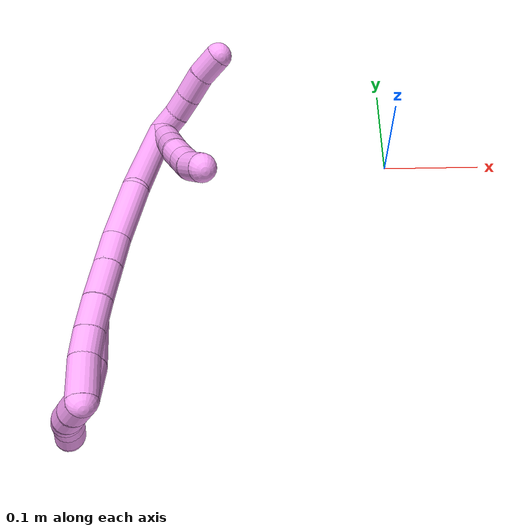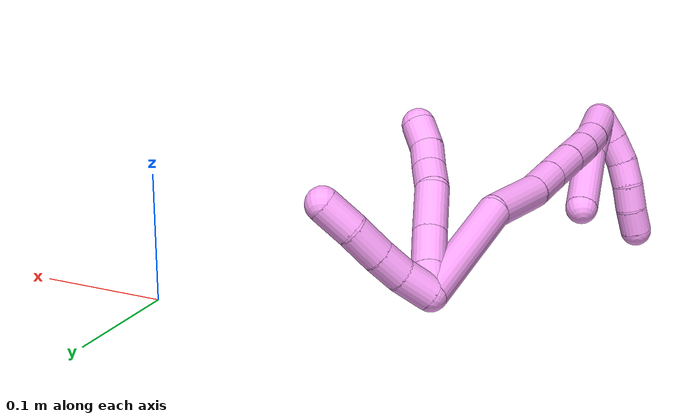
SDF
<sdf version="1.7">
 <world name="default">
  <model name="4">
   <static>0</static>
   <link name="4">
    <collision name="collision-cylinder-e_1_2_8">
     <pose>0.000596 0.000234 0.010581 -0.022149 0.056227 -0.000623</pose>
     <geometry><cylinder><radius>0.0125</radius><length>0.021201</length></cylinder></geometry>
     <surface>
      <friction><ode><mu>1.16</mu><mu2>1.16</mu2><slip1>0</slip1><slip2>0</slip2></ode></friction>
      <contact><ode><kp>1e+06</kp><kd>1</kd><max_vel>0</max_vel><min_depth>0.001</min_depth></ode></contact>
     </surface>
    </collision>
    <visual name="visual-cylinder-e_1_2_8">
     <pose>0.000596 0.000234 0.010581 -0.022149 0.056227 -0.000623</pose>
     <geometry><cylinder><radius>0.0125</radius><length>0.021201</length></cylinder></geometry>
     <material><ambient>1 0.65098 0.996078 1</ambient></material>
    </visual>
    <collision name="collision-cylinder-e_2_8_9">
     <pose>0.000728 -0.000214 0.036346 0.044924 -0.03049 -0.000685</pose>
     <geometry><cylinder><radius>0.0125</radius><length>0.030413</length></cylinder></geometry>
     <surface>
      <friction><ode><mu>1.16</mu><mu2>1.16</mu2><slip1>0</slip1><slip2>0</slip2></ode></friction>
      <contact><ode><kp>1e+06</kp><kd>1</kd><max_vel>0</max_vel><min_depth>0.001</min_depth></ode></contact>
     </surface>
    </collision>
    <visual name="visual-cylinder-e_2_8_9">
     <pose>0.000728 -0.000214 0.036346 0.044924 -0.03049 -0.000685</pose>
     <geometry><cylinder><radius>0.0125</radius><length>0.030413</length></cylinder></geometry>
     <material><ambient>1 0.65098 0.996078 1</ambient></material>
    </visual>
    <collision name="collision-cylinder-e_3_9_10">
     <pose>-0.001996 -0.001524 0.069881 0.034193 -0.122456 -0.002096</pose>
     <geometry><cylinder><radius>0.0125</radius><length>0.037001</length></cylinder></geometry>
     <surface>
      <friction><ode><mu>1.16</mu><mu2>1.16</mu2><slip1>0</slip1><slip2>0</slip2></ode></friction>
      <contact><ode><kp>1e+06</kp><kd>1</kd><max_vel>0</max_vel><min_depth>0.001</min_depth></ode></contact>
     </surface>
    </collision>
    <visual name="visual-cylinder-e_3_9_10">
     <pose>-0.001996 -0.001524 0.069881 0.034193 -0.122456 -0.002096</pose>
     <geometry><cylinder><radius>0.0125</radius><length>0.037001</length></cylinder></geometry>
     <material><ambient>1 0.65098 0.996078 1</ambient></material>
    </visual>
    <collision name="collision-cylinder-e_4_10_11">
     <pose>-0.002668 -0.001819 0.098135 -0.033622 0.158896 -0.002677</pose>
     <geometry><cylinder><radius>0.0125</radius><length>0.02007</length></cylinder></geometry>
     <surface>
      <friction><ode><mu>1.16</mu><mu2>1.16</mu2><slip1>0</slip1><slip2>0</slip2></ode></friction>
      <contact><ode><kp>1e+06</kp><kd>1</kd><max_vel>0</max_vel><min_depth>0.001</min_depth></ode></contact>
     </surface>
    </collision>
    <visual name="visual-cylinder-e_4_10_11">
     <pose>-0.002668 -0.001819 0.098135 -0.033622 0.158896 -0.002677</pose>
     <geometry><cylinder><radius>0.0125</radius><length>0.02007</length></cylinder></geometry>
     <material><ambient>1 0.65098 0.996078 1</ambient></material>
    </visual>
    <collision name="collision-cylinder-e_5_11_12">
     <pose>-0.000616 -0.001145 0.118039 -0.034023 0.046276 -0.000787</pose>
     <geometry><cylinder><radius>0.0125</radius><length>0.020034</length></cylinder></geometry>
     <surface>
      <friction><ode><mu>1.16</mu><mu2>1.16</mu2><slip1>0</slip1><slip2>0</slip2></ode></friction>
      <contact><ode><kp>1e+06</kp><kd>1</kd><max_vel>0</max_vel><min_depth>0.001</min_depth></ode></contact>
     </surface>
    </collision>
    <visual name="visual-cylinder-e_5_11_12">
     <pose>-0.000616 -0.001145 0.118039 -0.034023 0.046276 -0.000787</pose>
     <geometry><cylinder><radius>0.0125</radius><length>0.020034</length></cylinder></geometry>
     <material><ambient>1 0.65098 0.996078 1</ambient></material>
    </visual>
    <collision name="collision-cylinder-e_6_12_6">
     <pose>-0.00037 0.002327 0.138207 -0.298778 -0.020436 0.003076</pose>
     <geometry><cylinder><radius>0.0125</radius><length>0.021282</length></cylinder></geometry>
     <surface>
      <friction><ode><mu>1.16</mu><mu2>1.16</mu2><slip1>0</slip1><slip2>0</slip2></ode></friction>
      <contact><ode><kp>1e+06</kp><kd>1</kd><max_vel>0</max_vel><min_depth>0.001</min_depth></ode></contact>
     </surface>
    </collision>
    <visual name="visual-cylinder-e_6_12_6">
     <pose>-0.00037 0.002327 0.138207 -0.298778 -0.020436 0.003076</pose>
     <geometry><cylinder><radius>0.0125</radius><length>0.021282</length></cylinder></geometry>
     <material><ambient>1 0.65098 0.996078 1</ambient></material>
    </visual>
    <collision name="collision-cylinder-e_1_2_13">
     <pose>-0.003795 0.011826 0.003117 -1.31308 -0.300889 0.232568</pose>
     <geometry><cylinder><radius>0.0125</radius><length>0.02561</length></cylinder></geometry>
     <surface>
      <friction><ode><mu>1.16</mu><mu2>1.16</mu2><slip1>0</slip1><slip2>0</slip2></ode></friction>
      <contact><ode><kp>1e+06</kp><kd>1</kd><max_vel>0</max_vel><min_depth>0.001</min_depth></ode></contact>
     </surface>
    </collision>
    <visual name="visual-cylinder-e_1_2_13">
     <pose>-0.003795 0.011826 0.003117 -1.31308 -0.300889 0.232568</pose>
     <geometry><cylinder><radius>0.0125</radius><length>0.02561</length></cylinder></geometry>
     <material><ambient>1 0.65098 0.996078 1</ambient></material>
    </visual>
    <collision name="collision-cylinder-e_2_13_14">
     <pose>-0.012049 0.033107 0.009438 -1.24412 -0.420078 0.303366</pose>
     <geometry><cylinder><radius>0.0125</radius><length>0.021868</length></cylinder></geometry>
     <surface>
      <friction><ode><mu>1.16</mu><mu2>1.16</mu2><slip1>0</slip1><slip2>0</slip2></ode></friction>
      <contact><ode><kp>1e+06</kp><kd>1</kd><max_vel>0</max_vel><min_depth>0.001</min_depth></ode></contact>
     </surface>
    </collision>
    <visual name="visual-cylinder-e_2_13_14">
     <pose>-0.012049 0.033107 0.009438 -1.24412 -0.420078 0.303366</pose>
     <geometry><cylinder><radius>0.0125</radius><length>0.021868</length></cylinder></geometry>
     <material><ambient>1 0.65098 0.996078 1</ambient></material>
    </visual>
    <collision name="collision-cylinder-e_3_14_15">
     <pose>-0.022212 0.053424 0.01699 -1.19 -0.453633 0.309899</pose>
     <geometry><cylinder><radius>0.0125</radius><length>0.026031</length></cylinder></geometry>
     <surface>
      <friction><ode><mu>1.16</mu><mu2>1.16</mu2><slip1>0</slip1><slip2>0</slip2></ode></friction>
      <contact><ode><kp>1e+06</kp><kd>1</kd><max_vel>0</max_vel><min_depth>0.001</min_depth></ode></contact>
     </surface>
    </collision>
    <visual name="visual-cylinder-e_3_14_15">
     <pose>-0.022212 0.053424 0.01699 -1.19 -0.453633 0.309899</pose>
     <geometry><cylinder><radius>0.0125</radius><length>0.026031</length></cylinder></geometry>
     <material><ambient>1 0.65098 0.996078 1</ambient></material>
    </visual>
    <collision name="collision-cylinder-e_4_15_5">
     <pose>-0.031855 0.075639 0.026906 -1.11489 -0.301969 0.189123</pose>
     <geometry><cylinder><radius>0.0125</radius><length>0.026491</length></cylinder></geometry>
     <surface>
      <friction><ode><mu>1.16</mu><mu2>1.16</mu2><slip1>0</slip1><slip2>0</slip2></ode></friction>
      <contact><ode><kp>1e+06</kp><kd>1</kd><max_vel>0</max_vel><min_depth>0.001</min_depth></ode></contact>
     </surface>
    </collision>
    <visual name="visual-cylinder-e_4_15_5">
     <pose>-0.031855 0.075639 0.026906 -1.11489 -0.301969 0.189123</pose>
     <geometry><cylinder><radius>0.0125</radius><length>0.026491</length></cylinder></geometry>
     <material><ambient>1 0.65098 0.996078 1</ambient></material>
    </visual>
    <collision name="collision-cylinder-e_1_2_16">
     <pose>0.001099 -0.025617 0.041462 0.553436 0.022538 0.006401</pose>
     <geometry><cylinder><radius>0.0125</radius><length>0.097499</length></cylinder></geometry>
     <surface>
      <friction><ode><mu>1.16</mu><mu2>1.16</mu2><slip1>0</slip1><slip2>0</slip2></ode></friction>
      <contact><ode><kp>1e+06</kp><kd>1</kd><max_vel>0</max_vel><min_depth>0.001</min_depth></ode></contact>
     </surface>
    </collision>
    <visual name="visual-cylinder-e_1_2_16">
     <pose>0.001099 -0.025617 0.041462 0.553436 0.022538 0.006401</pose>
     <geometry><cylinder><radius>0.0125</radius><length>0.097499</length></cylinder></geometry>
     <material><ambient>1 0.65098 0.996078 1</ambient></material>
    </visual>
    <collision name="collision-cylinder-e_2_16_17">
     <pose>0.008682 -0.070177 0.100831 0.813503 0.243816 0.105455</pose>
     <geometry><cylinder><radius>0.0125</radius><length>0.053723</length></cylinder></geometry>
     <surface>
      <friction><ode><mu>1.16</mu><mu2>1.16</mu2><slip1>0</slip1><slip2>0</slip2></ode></friction>
      <contact><ode><kp>1e+06</kp><kd>1</kd><max_vel>0</max_vel><min_depth>0.001</min_depth></ode></contact>
     </surface>
    </collision>
    <visual name="visual-cylinder-e_2_16_17">
     <pose>0.008682 -0.070177 0.100831 0.813503 0.243816 0.105455</pose>
     <geometry><cylinder><radius>0.0125</radius><length>0.053723</length></cylinder></geometry>
     <material><ambient>1 0.65098 0.996078 1</ambient></material>
    </visual>
    <collision name="collision-cylinder-e_3_17_18">
     <pose>0.018118 -0.097746 0.130103 0.64922 0.203964 0.068848</pose>
     <geometry><cylinder><radius>0.0125</radius><length>0.029142</length></cylinder></geometry>
     <surface>
      <friction><ode><mu>1.16</mu><mu2>1.16</mu2><slip1>0</slip1><slip2>0</slip2></ode></friction>
      <contact><ode><kp>1e+06</kp><kd>1</kd><max_vel>0</max_vel><min_depth>0.001</min_depth></ode></contact>
     </surface>
    </collision>
    <visual name="visual-cylinder-e_3_17_18">
     <pose>0.018118 -0.097746 0.130103 0.64922 0.203964 0.068848</pose>
     <geometry><cylinder><radius>0.0125</radius><length>0.029142</length></cylinder></geometry>
     <material><ambient>1 0.65098 0.996078 1</ambient></material>
    </visual>
    <collision name="collision-cylinder-e_4_18_19">
     <pose>0.024462 -0.11625 0.154356 0.653975 0.206003 0.070088</pose>
     <geometry><cylinder><radius>0.0125</radius><length>0.033175</length></cylinder></geometry>
     <surface>
      <friction><ode><mu>1.16</mu><mu2>1.16</mu2><slip1>0</slip1><slip2>0</slip2></ode></friction>
      <contact><ode><kp>1e+06</kp><kd>1</kd><max_vel>0</max_vel><min_depth>0.001</min_depth></ode></contact>
     </surface>
    </collision>
    <visual name="visual-cylinder-e_4_18_19">
     <pose>0.024462 -0.11625 0.154356 0.653975 0.206003 0.070088</pose>
     <geometry><cylinder><radius>0.0125</radius><length>0.033175</length></cylinder></geometry>
     <material><ambient>1 0.65098 0.996078 1</ambient></material>
    </visual>
    <collision name="collision-cylinder-e_5_19_20">
     <pose>0.031409 -0.134526 0.178038 0.661218 0.254255 0.087679</pose>
     <geometry><cylinder><radius>0.0125</radius><length>0.028262</length></cylinder></geometry>
     <surface>
      <friction><ode><mu>1.16</mu><mu2>1.16</mu2><slip1>0</slip1><slip2>0</slip2></ode></friction>
      <contact><ode><kp>1e+06</kp><kd>1</kd><max_vel>0</max_vel><min_depth>0.001</min_depth></ode></contact>
     </surface>
    </collision>
    <visual name="visual-cylinder-e_5_19_20">
     <pose>0.031409 -0.134526 0.178038 0.661218 0.254255 0.087679</pose>
     <geometry><cylinder><radius>0.0125</radius><length>0.028262</length></cylinder></geometry>
     <material><ambient>1 0.65098 0.996078 1</ambient></material>
    </visual>
    <collision name="collision-cylinder-e_6_20_21">
     <pose>0.038199 -0.149177 0.198137 0.591629 0.280961 0.086139</pose>
     <geometry><cylinder><radius>0.0125</radius><length>0.023336</length></cylinder></geometry>
     <surface>
      <friction><ode><mu>1.16</mu><mu2>1.16</mu2><slip1>0</slip1><slip2>0</slip2></ode></friction>
      <contact><ode><kp>1e+06</kp><kd>1</kd><max_vel>0</max_vel><min_depth>0.001</min_depth></ode></contact>
     </surface>
    </collision>
    <visual name="visual-cylinder-e_6_20_21">
     <pose>0.038199 -0.149177 0.198137 0.591629 0.280961 0.086139</pose>
     <geometry><cylinder><radius>0.0125</radius><length>0.023336</length></cylinder></geometry>
     <material><ambient>1 0.65098 0.996078 1</ambient></material>
    </visual>
    <collision name="collision-cylinder-e_7_21_1">
     <pose>0.046434 -0.162399 0.222617 0.430502 0.290896 0.064032</pose>
     <geometry><cylinder><radius>0.0125</radius><length>0.034862</length></cylinder></geometry>
     <surface>
      <friction><ode><mu>1.16</mu><mu2>1.16</mu2><slip1>0</slip1><slip2>0</slip2></ode></friction>
      <contact><ode><kp>1e+06</kp><kd>1</kd><max_vel>0</max_vel><min_depth>0.001</min_depth></ode></contact>
     </surface>
    </collision>
    <visual name="visual-cylinder-e_7_21_1">
     <pose>0.046434 -0.162399 0.222617 0.430502 0.290896 0.064032</pose>
     <geometry><cylinder><radius>0.0125</radius><length>0.034862</length></cylinder></geometry>
     <material><ambient>1 0.65098 0.996078 1</ambient></material>
    </visual>
    <collision name="collision-cylinder-e_1_1_22">
     <pose>0.055966 -0.176088 0.231937 2.28751 0.470489 0.969587</pose>
     <geometry><cylinder><radius>0.0125</radius><length>0.02</length></cylinder></geometry>
     <surface>
      <friction><ode><mu>1.16</mu><mu2>1.16</mu2><slip1>0</slip1><slip2>0</slip2></ode></friction>
      <contact><ode><kp>1e+06</kp><kd>1</kd><max_vel>0</max_vel><min_depth>0.001</min_depth></ode></contact>
     </surface>
    </collision>
    <visual name="visual-cylinder-e_1_1_22">
     <pose>0.055966 -0.176088 0.231937 2.28751 0.470489 0.969587</pose>
     <geometry><cylinder><radius>0.0125</radius><length>0.02</length></cylinder></geometry>
     <material><ambient>1 0.65098 0.996078 1</ambient></material>
    </visual>
    <collision name="collision-cylinder-e_2_22_23">
     <pose>0.065259 -0.188716 0.219567 2.40502 0.49603 1.16146</pose>
     <geometry><cylinder><radius>0.0125</radius><length>0.02</length></cylinder></geometry>
     <surface>
      <friction><ode><mu>1.16</mu><mu2>1.16</mu2><slip1>0</slip1><slip2>0</slip2></ode></friction>
      <contact><ode><kp>1e+06</kp><kd>1</kd><max_vel>0</max_vel><min_depth>0.001</min_depth></ode></contact>
     </surface>
    </collision>
    <visual name="visual-cylinder-e_2_22_23">
     <pose>0.065259 -0.188716 0.219567 2.40502 0.49603 1.16146</pose>
     <geometry><cylinder><radius>0.0125</radius><length>0.02</length></cylinder></geometry>
     <material><ambient>1 0.65098 0.996078 1</ambient></material>
    </visual>
    <collision name="collision-cylinder-e_3_23_24">
     <pose>0.075299 -0.198743 0.205626 2.63525 0.556346 1.6694</pose>
     <geometry><cylinder><radius>0.0125</radius><length>0.02</length></cylinder></geometry>
     <surface>
      <friction><ode><mu>1.16</mu><mu2>1.16</mu2><slip1>0</slip1><slip2>0</slip2></ode></friction>
      <contact><ode><kp>1e+06</kp><kd>1</kd><max_vel>0</max_vel><min_depth>0.001</min_depth></ode></contact>
     </surface>
    </collision>
    <visual name="visual-cylinder-e_3_23_24">
     <pose>0.075299 -0.198743 0.205626 2.63525 0.556346 1.6694</pose>
     <geometry><cylinder><radius>0.0125</radius><length>0.02</length></cylinder></geometry>
     <material><ambient>1 0.65098 0.996078 1</ambient></material>
    </visual>
    <collision name="collision-cylinder-e_4_24_25">
     <pose>0.087232 -0.206668 0.191775 2.60664 0.727728 1.89405</pose>
     <geometry><cylinder><radius>0.0125</radius><length>0.02</length></cylinder></geometry>
     <surface>
      <friction><ode><mu>1.16</mu><mu2>1.16</mu2><slip1>0</slip1><slip2>0</slip2></ode></friction>
      <contact><ode><kp>1e+06</kp><kd>1</kd><max_vel>0</max_vel><min_depth>0.001</min_depth></ode></contact>
     </surface>
    </collision>
    <visual name="visual-cylinder-e_4_24_25">
     <pose>0.087232 -0.206668 0.191775 2.60664 0.727728 1.89405</pose>
     <geometry><cylinder><radius>0.0125</radius><length>0.02</length></cylinder></geometry>
     <material><ambient>1 0.65098 0.996078 1</ambient></material>
    </visual>
    <collision name="collision-cylinder-e_5_25_4">
     <pose>0.100981 -0.215177 0.180107 2.41059 0.789131 1.65511</pose>
     <geometry><cylinder><radius>0.0125</radius><length>0.02</length></cylinder></geometry>
     <surface>
      <friction><ode><mu>1.16</mu><mu2>1.16</mu2><slip1>0</slip1><slip2>0</slip2></ode></friction>
      <contact><ode><kp>1e+06</kp><kd>1</kd><max_vel>0</max_vel><min_depth>0.001</min_depth></ode></contact>
     </surface>
    </collision>
    <visual name="visual-cylinder-e_5_25_4">
     <pose>0.100981 -0.215177 0.180107 2.41059 0.789131 1.65511</pose>
     <geometry><cylinder><radius>0.0125</radius><length>0.02</length></cylinder></geometry>
     <material><ambient>1 0.65098 0.996078 1</ambient></material>
    </visual>
    <collision name="collision-cylinder-e_1_1_26">
     <pose>0.053054 -0.164085 0.219061 -2.86674 0.083066 -0.583813</pose>
     <geometry><cylinder><radius>0.0125</radius><length>0.039058</length></cylinder></geometry>
     <surface>
      <friction><ode><mu>1.16</mu><mu2>1.16</mu2><slip1>0</slip1><slip2>0</slip2></ode></friction>
      <contact><ode><kp>1e+06</kp><kd>1</kd><max_vel>0</max_vel><min_depth>0.001</min_depth></ode></contact>
     </surface>
    </collision>
    <visual name="visual-cylinder-e_1_1_26">
     <pose>0.053054 -0.164085 0.219061 -2.86674 0.083066 -0.583813</pose>
     <geometry><cylinder><radius>0.0125</radius><length>0.039058</length></cylinder></geometry>
     <material><ambient>1 0.65098 0.996078 1</ambient></material>
    </visual>
    <collision name="collision-cylinder-e_2_26_3">
     <pose>0.052879 -0.151803 0.170729 -2.90935 -0.058946 0.495122</pose>
     <geometry><cylinder><radius>0.0125</radius><length>0.060942</length></cylinder></geometry>
     <surface>
      <friction><ode><mu>1.16</mu><mu2>1.16</mu2><slip1>0</slip1><slip2>0</slip2></ode></friction>
      <contact><ode><kp>1e+06</kp><kd>1</kd><max_vel>0</max_vel><min_depth>0.001</min_depth></ode></contact>
     </surface>
    </collision>
    <visual name="visual-cylinder-e_2_26_3">
     <pose>0.052879 -0.151803 0.170729 -2.90935 -0.058946 0.495122</pose>
     <geometry><cylinder><radius>0.0125</radius><length>0.060942</length></cylinder></geometry>
     <material><ambient>1 0.65098 0.996078 1</ambient></material>
    </visual>
    <collision name="collision-sphere-3">
     <pose>0.051084 -0.144802 0.141127 0 -0 0</pose>
     <geometry><sphere><radius>0.0125</radius></sphere></geometry>
     <surface>
      <friction><ode><mu>1.16</mu><mu2>1.16</mu2><slip1>0</slip1><slip2>0</slip2></ode></friction>
      <contact><ode><kp>1e+06</kp><kd>1</kd><max_vel>0</max_vel><min_depth>0.001</min_depth></ode></contact>
     </surface>
    </collision>
    <visual name="visual-sphere-3">
     <pose>0.051084 -0.144802 0.141127 0 -0 0</pose>
     <geometry><sphere><radius>0.0125</radius></sphere></geometry>
     <material><ambient>1 0.65098 0.996078 1</ambient></material>
    </visual>
    <collision name="collision-sphere-26">
     <pose>0.054674 -0.158803 0.20033 0 -0 0</pose>
     <geometry><sphere><radius>0.0125</radius></sphere></geometry>
     <surface>
      <friction><ode><mu>1.16</mu><mu2>1.16</mu2><slip1>0</slip1><slip2>0</slip2></ode></friction>
      <contact><ode><kp>1e+06</kp><kd>1</kd><max_vel>0</max_vel><min_depth>0.001</min_depth></ode></contact>
     </surface>
    </collision>
    <visual name="visual-sphere-26">
     <pose>0.054674 -0.158803 0.20033 0 -0 0</pose>
     <geometry><sphere><radius>0.0125</radius></sphere></geometry>
     <material><ambient>1 0.65098 0.996078 1</ambient></material>
    </visual>
    <collision name="collision-sphere-4">
     <pose>0.108079 -0.219881 0.174862 0 -0 0</pose>
     <geometry><sphere><radius>0.0125</radius></sphere></geometry>
     <surface>
      <friction><ode><mu>1.16</mu><mu2>1.16</mu2><slip1>0</slip1><slip2>0</slip2></ode></friction>
      <contact><ode><kp>1e+06</kp><kd>1</kd><max_vel>0</max_vel><min_depth>0.001</min_depth></ode></contact>
     </surface>
    </collision>
    <visual name="visual-sphere-4">
     <pose>0.108079 -0.219881 0.174862 0 -0 0</pose>
     <geometry><sphere><radius>0.0125</radius></sphere></geometry>
     <material><ambient>1 0.65098 0.996078 1</ambient></material>
    </visual>
    <collision name="collision-sphere-25">
     <pose>0.093884 -0.210474 0.185352 0 -0 0</pose>
     <geometry><sphere><radius>0.0125</radius></sphere></geometry>
     <surface>
      <friction><ode><mu>1.16</mu><mu2>1.16</mu2><slip1>0</slip1><slip2>0</slip2></ode></friction>
      <contact><ode><kp>1e+06</kp><kd>1</kd><max_vel>0</max_vel><min_depth>0.001</min_depth></ode></contact>
     </surface>
    </collision>
    <visual name="visual-sphere-25">
     <pose>0.093884 -0.210474 0.185352 0 -0 0</pose>
     <geometry><sphere><radius>0.0125</radius></sphere></geometry>
     <material><ambient>1 0.65098 0.996078 1</ambient></material>
    </visual>
    <collision name="collision-sphere-24">
     <pose>0.08058 -0.202861 0.198199 0 -0 0</pose>
     <geometry><sphere><radius>0.0125</radius></sphere></geometry>
     <surface>
      <friction><ode><mu>1.16</mu><mu2>1.16</mu2><slip1>0</slip1><slip2>0</slip2></ode></friction>
      <contact><ode><kp>1e+06</kp><kd>1</kd><max_vel>0</max_vel><min_depth>0.001</min_depth></ode></contact>
     </surface>
    </collision>
    <visual name="visual-sphere-24">
     <pose>0.08058 -0.202861 0.198199 0 -0 0</pose>
     <geometry><sphere><radius>0.0125</radius></sphere></geometry>
     <material><ambient>1 0.65098 0.996078 1</ambient></material>
    </visual>
    <collision name="collision-sphere-23">
     <pose>0.070018 -0.194624 0.213052 0 -0 0</pose>
     <geometry><sphere><radius>0.0125</radius></sphere></geometry>
     <surface>
      <friction><ode><mu>1.16</mu><mu2>1.16</mu2><slip1>0</slip1><slip2>0</slip2></ode></friction>
      <contact><ode><kp>1e+06</kp><kd>1</kd><max_vel>0</max_vel><min_depth>0.001</min_depth></ode></contact>
     </surface>
    </collision>
    <visual name="visual-sphere-23">
     <pose>0.070018 -0.194624 0.213052 0 -0 0</pose>
     <geometry><sphere><radius>0.0125</radius></sphere></geometry>
     <material><ambient>1 0.65098 0.996078 1</ambient></material>
    </visual>
    <collision name="collision-sphere-22">
     <pose>0.0605 -0.182808 0.226082 0 -0 0</pose>
     <geometry><sphere><radius>0.0125</radius></sphere></geometry>
     <surface>
      <friction><ode><mu>1.16</mu><mu2>1.16</mu2><slip1>0</slip1><slip2>0</slip2></ode></friction>
      <contact><ode><kp>1e+06</kp><kd>1</kd><max_vel>0</max_vel><min_depth>0.001</min_depth></ode></contact>
     </surface>
    </collision>
    <visual name="visual-sphere-22">
     <pose>0.0605 -0.182808 0.226082 0 -0 0</pose>
     <geometry><sphere><radius>0.0125</radius></sphere></geometry>
     <material><ambient>1 0.65098 0.996078 1</ambient></material>
    </visual>
    <collision name="collision-sphere-1">
     <pose>0.051433 -0.169367 0.237792 0 -0 0</pose>
     <geometry><sphere><radius>0.0125</radius></sphere></geometry>
     <surface>
      <friction><ode><mu>1.16</mu><mu2>1.16</mu2><slip1>0</slip1><slip2>0</slip2></ode></friction>
      <contact><ode><kp>1e+06</kp><kd>1</kd><max_vel>0</max_vel><min_depth>0.001</min_depth></ode></contact>
     </surface>
    </collision>
    <visual name="visual-sphere-1">
     <pose>0.051433 -0.169367 0.237792 0 -0 0</pose>
     <geometry><sphere><radius>0.0125</radius></sphere></geometry>
     <material><ambient>1 0.65098 0.996078 1</ambient></material>
    </visual>
    <collision name="collision-sphere-21">
     <pose>0.041434 -0.15543 0.207442 0 -0 0</pose>
     <geometry><sphere><radius>0.0125</radius></sphere></geometry>
     <surface>
      <friction><ode><mu>1.16</mu><mu2>1.16</mu2><slip1>0</slip1><slip2>0</slip2></ode></friction>
      <contact><ode><kp>1e+06</kp><kd>1</kd><max_vel>0</max_vel><min_depth>0.001</min_depth></ode></contact>
     </surface>
    </collision>
    <visual name="visual-sphere-21">
     <pose>0.041434 -0.15543 0.207442 0 -0 0</pose>
     <geometry><sphere><radius>0.0125</radius></sphere></geometry>
     <material><ambient>1 0.65098 0.996078 1</ambient></material>
    </visual>
    <collision name="collision-sphere-12">
     <pose>-0.000153 -0.000805 0.128039 0 -0 0</pose>
     <geometry><sphere><radius>0.0125</radius></sphere></geometry>
     <surface>
      <friction><ode><mu>1.16</mu><mu2>1.16</mu2><slip1>0</slip1><slip2>0</slip2></ode></friction>
      <contact><ode><kp>1e+06</kp><kd>1</kd><max_vel>0</max_vel><min_depth>0.001</min_depth></ode></contact>
     </surface>
    </collision>
    <visual name="visual-sphere-12">
     <pose>-0.000153 -0.000805 0.128039 0 -0 0</pose>
     <geometry><sphere><radius>0.0125</radius></sphere></geometry>
     <material><ambient>1 0.65098 0.996078 1</ambient></material>
    </visual>
    <collision name="collision-sphere-11">
     <pose>-0.00108 -0.001486 0.108038 0 -0 0</pose>
     <geometry><sphere><radius>0.0125</radius></sphere></geometry>
     <surface>
      <friction><ode><mu>1.16</mu><mu2>1.16</mu2><slip1>0</slip1><slip2>0</slip2></ode></friction>
      <contact><ode><kp>1e+06</kp><kd>1</kd><max_vel>0</max_vel><min_depth>0.001</min_depth></ode></contact>
     </surface>
    </collision>
    <visual name="visual-sphere-11">
     <pose>-0.00108 -0.001486 0.108038 0 -0 0</pose>
     <geometry><sphere><radius>0.0125</radius></sphere></geometry>
     <material><ambient>1 0.65098 0.996078 1</ambient></material>
    </visual>
    <collision name="collision-sphere-10">
     <pose>-0.004255 -0.002152 0.088233 0 -0 0</pose>
     <geometry><sphere><radius>0.0125</radius></sphere></geometry>
     <surface>
      <friction><ode><mu>1.16</mu><mu2>1.16</mu2><slip1>0</slip1><slip2>0</slip2></ode></friction>
      <contact><ode><kp>1e+06</kp><kd>1</kd><max_vel>0</max_vel><min_depth>0.001</min_depth></ode></contact>
     </surface>
    </collision>
    <visual name="visual-sphere-10">
     <pose>-0.004255 -0.002152 0.088233 0 -0 0</pose>
     <geometry><sphere><radius>0.0125</radius></sphere></geometry>
     <material><ambient>1 0.65098 0.996078 1</ambient></material>
    </visual>
    <collision name="collision-sphere-9">
     <pose>0.000264 -0.000896 0.05153 0 -0 0</pose>
     <geometry><sphere><radius>0.0125</radius></sphere></geometry>
     <surface>
      <friction><ode><mu>1.16</mu><mu2>1.16</mu2><slip1>0</slip1><slip2>0</slip2></ode></friction>
      <contact><ode><kp>1e+06</kp><kd>1</kd><max_vel>0</max_vel><min_depth>0.001</min_depth></ode></contact>
     </surface>
    </collision>
    <visual name="visual-sphere-9">
     <pose>0.000264 -0.000896 0.05153 0 -0 0</pose>
     <geometry><sphere><radius>0.0125</radius></sphere></geometry>
     <material><ambient>1 0.65098 0.996078 1</ambient></material>
    </visual>
    <collision name="collision-sphere-2">
     <geometry><sphere><radius>0.0125</radius></sphere></geometry>
     <surface>
      <friction><ode><mu>1.16</mu><mu2>1.16</mu2><slip1>0</slip1><slip2>0</slip2></ode></friction>
      <contact><ode><kp>1e+06</kp><kd>1</kd><max_vel>0</max_vel><min_depth>0.001</min_depth></ode></contact>
     </surface>
    </collision>
    <visual name="visual-sphere-2">
     <geometry><sphere><radius>0.0125</radius></sphere></geometry>
     <material><ambient>1 0.65098 0.996078 1</ambient></material>
    </visual>
    <collision name="collision-sphere-19">
     <pose>0.027855 -0.126128 0.167243 0 -0 0</pose>
     <geometry><sphere><radius>0.0125</radius></sphere></geometry>
     <surface>
      <friction><ode><mu>1.16</mu><mu2>1.16</mu2><slip1>0</slip1><slip2>0</slip2></ode></friction>
      <contact><ode><kp>1e+06</kp><kd>1</kd><max_vel>0</max_vel><min_depth>0.001</min_depth></ode></contact>
     </surface>
    </collision>
    <visual name="visual-sphere-19">
     <pose>0.027855 -0.126128 0.167243 0 -0 0</pose>
     <geometry><sphere><radius>0.0125</radius></sphere></geometry>
     <material><ambient>1 0.65098 0.996078 1</ambient></material>
    </visual>
    <collision name="collision-sphere-8">
     <pose>0.001191 0.000469 0.021162 0 -0 0</pose>
     <geometry><sphere><radius>0.0125</radius></sphere></geometry>
     <surface>
      <friction><ode><mu>1.16</mu><mu2>1.16</mu2><slip1>0</slip1><slip2>0</slip2></ode></friction>
      <contact><ode><kp>1e+06</kp><kd>1</kd><max_vel>0</max_vel><min_depth>0.001</min_depth></ode></contact>
     </surface>
    </collision>
    <visual name="visual-sphere-8">
     <pose>0.001191 0.000469 0.021162 0 -0 0</pose>
     <geometry><sphere><radius>0.0125</radius></sphere></geometry>
     <material><ambient>1 0.65098 0.996078 1</ambient></material>
    </visual>
    <collision name="collision-sphere-6">
     <pose>-0.000588 0.005458 0.148374 0 -0 0</pose>
     <geometry><sphere><radius>0.0125</radius></sphere></geometry>
     <surface>
      <friction><ode><mu>1.16</mu><mu2>1.16</mu2><slip1>0</slip1><slip2>0</slip2></ode></friction>
      <contact><ode><kp>1e+06</kp><kd>1</kd><max_vel>0</max_vel><min_depth>0.001</min_depth></ode></contact>
     </surface>
    </collision>
    <visual name="visual-sphere-6">
     <pose>-0.000588 0.005458 0.148374 0 -0 0</pose>
     <geometry><sphere><radius>0.0125</radius></sphere></geometry>
     <material><ambient>1 0.65098 0.996078 1</ambient></material>
    </visual>
    <collision name="collision-sphere-13">
     <pose>-0.00759 0.023652 0.006234 0 -0 0</pose>
     <geometry><sphere><radius>0.0125</radius></sphere></geometry>
     <surface>
      <friction><ode><mu>1.16</mu><mu2>1.16</mu2><slip1>0</slip1><slip2>0</slip2></ode></friction>
      <contact><ode><kp>1e+06</kp><kd>1</kd><max_vel>0</max_vel><min_depth>0.001</min_depth></ode></contact>
     </surface>
    </collision>
    <visual name="visual-sphere-13">
     <pose>-0.00759 0.023652 0.006234 0 -0 0</pose>
     <geometry><sphere><radius>0.0125</radius></sphere></geometry>
     <material><ambient>1 0.65098 0.996078 1</ambient></material>
    </visual>
    <collision name="collision-sphere-14">
     <pose>-0.016509 0.042563 0.012641 0 -0 0</pose>
     <geometry><sphere><radius>0.0125</radius></sphere></geometry>
     <surface>
      <friction><ode><mu>1.16</mu><mu2>1.16</mu2><slip1>0</slip1><slip2>0</slip2></ode></friction>
      <contact><ode><kp>1e+06</kp><kd>1</kd><max_vel>0</max_vel><min_depth>0.001</min_depth></ode></contact>
     </surface>
    </collision>
    <visual name="visual-sphere-14">
     <pose>-0.016509 0.042563 0.012641 0 -0 0</pose>
     <geometry><sphere><radius>0.0125</radius></sphere></geometry>
     <material><ambient>1 0.65098 0.996078 1</ambient></material>
    </visual>
    <collision name="collision-sphere-15">
     <pose>-0.027916 0.064285 0.021338 0 -0 0</pose>
     <geometry><sphere><radius>0.0125</radius></sphere></geometry>
     <surface>
      <friction><ode><mu>1.16</mu><mu2>1.16</mu2><slip1>0</slip1><slip2>0</slip2></ode></friction>
      <contact><ode><kp>1e+06</kp><kd>1</kd><max_vel>0</max_vel><min_depth>0.001</min_depth></ode></contact>
     </surface>
    </collision>
    <visual name="visual-sphere-15">
     <pose>-0.027916 0.064285 0.021338 0 -0 0</pose>
     <geometry><sphere><radius>0.0125</radius></sphere></geometry>
     <material><ambient>1 0.65098 0.996078 1</ambient></material>
    </visual>
    <collision name="collision-sphere-5">
     <pose>-0.035795 0.086994 0.032473 0 -0 0</pose>
     <geometry><sphere><radius>0.0125</radius></sphere></geometry>
     <surface>
      <friction><ode><mu>1.16</mu><mu2>1.16</mu2><slip1>0</slip1><slip2>0</slip2></ode></friction>
      <contact><ode><kp>1e+06</kp><kd>1</kd><max_vel>0</max_vel><min_depth>0.001</min_depth></ode></contact>
     </surface>
    </collision>
    <visual name="visual-sphere-5">
     <pose>-0.035795 0.086994 0.032473 0 -0 0</pose>
     <geometry><sphere><radius>0.0125</radius></sphere></geometry>
     <material><ambient>1 0.65098 0.996078 1</ambient></material>
    </visual>
    <collision name="collision-sphere-16">
     <pose>0.002197 -0.051234 0.082924 0 -0 0</pose>
     <geometry><sphere><radius>0.0125</radius></sphere></geometry>
     <surface>
      <friction><ode><mu>1.16</mu><mu2>1.16</mu2><slip1>0</slip1><slip2>0</slip2></ode></friction>
      <contact><ode><kp>1e+06</kp><kd>1</kd><max_vel>0</max_vel><min_depth>0.001</min_depth></ode></contact>
     </surface>
    </collision>
    <visual name="visual-sphere-16">
     <pose>0.002197 -0.051234 0.082924 0 -0 0</pose>
     <geometry><sphere><radius>0.0125</radius></sphere></geometry>
     <material><ambient>1 0.65098 0.996078 1</ambient></material>
    </visual>
    <collision name="collision-sphere-17">
     <pose>0.015166 -0.089119 0.118737 0 -0 0</pose>
     <geometry><sphere><radius>0.0125</radius></sphere></geometry>
     <surface>
      <friction><ode><mu>1.16</mu><mu2>1.16</mu2><slip1>0</slip1><slip2>0</slip2></ode></friction>
      <contact><ode><kp>1e+06</kp><kd>1</kd><max_vel>0</max_vel><min_depth>0.001</min_depth></ode></contact>
     </surface>
    </collision>
    <visual name="visual-sphere-17">
     <pose>0.015166 -0.089119 0.118737 0 -0 0</pose>
     <geometry><sphere><radius>0.0125</radius></sphere></geometry>
     <material><ambient>1 0.65098 0.996078 1</ambient></material>
    </visual>
    <collision name="collision-sphere-18">
     <pose>0.021069 -0.106372 0.141469 0 -0 0</pose>
     <geometry><sphere><radius>0.0125</radius></sphere></geometry>
     <surface>
      <friction><ode><mu>1.16</mu><mu2>1.16</mu2><slip1>0</slip1><slip2>0</slip2></ode></friction>
      <contact><ode><kp>1e+06</kp><kd>1</kd><max_vel>0</max_vel><min_depth>0.001</min_depth></ode></contact>
     </surface>
    </collision>
    <visual name="visual-sphere-18">
     <pose>0.021069 -0.106372 0.141469 0 -0 0</pose>
     <geometry><sphere><radius>0.0125</radius></sphere></geometry>
     <material><ambient>1 0.65098 0.996078 1</ambient></material>
    </visual>
    <collision name="collision-sphere-20">
     <pose>0.034964 -0.142925 0.188832 0 -0 0</pose>
     <geometry><sphere><radius>0.0125</radius></sphere></geometry>
     <surface>
      <friction><ode><mu>1.16</mu><mu2>1.16</mu2><slip1>0</slip1><slip2>0</slip2></ode></friction>
      <contact><ode><kp>1e+06</kp><kd>1</kd><max_vel>0</max_vel><min_depth>0.001</min_depth></ode></contact>
     </surface>
    </collision>
    <visual name="visual-sphere-20">
     <pose>0.034964 -0.142925 0.188832 0 -0 0</pose>
     <geometry><sphere><radius>0.0125</radius></sphere></geometry>
     <material><ambient>1 0.65098 0.996078 1</ambient></material>
    </visual>
    <inertial>
     <pose>0.021873 -0.07591 0.117282 0 -0 0</pose>
     <mass>0.75</mass>
     <inertia>
      <ixx>0.000184</ixx>
      <ixy>0</ixy>
      <ixz>0</ixz>
      <iyy>0.000101</iyy>
      <iyz>0</iyz>
      <izz>6.2e-05</izz>
     </inertia>
    </inertial>
   </link>
   <pose>-0.230471 0.014654 0.050546 0.391744 0.916455 -0.641733</pose>
  </model>
 </world>
</sdf>
